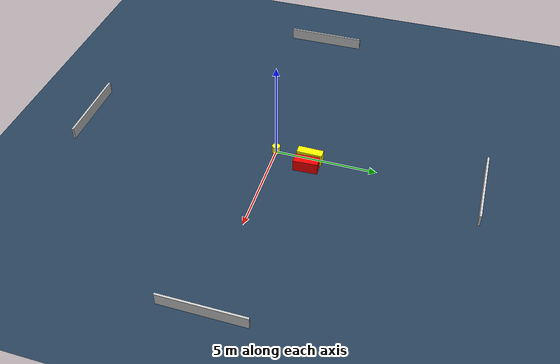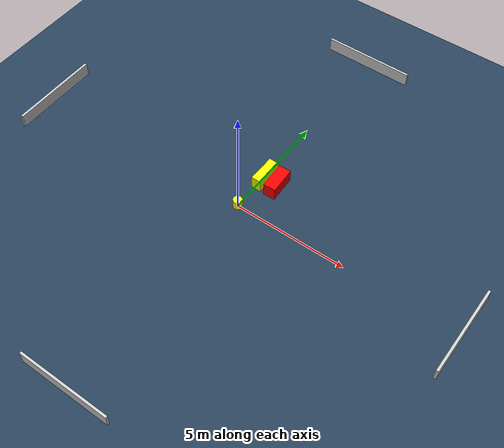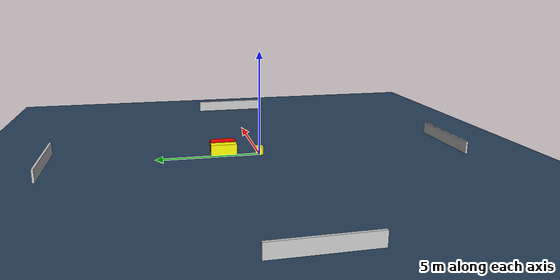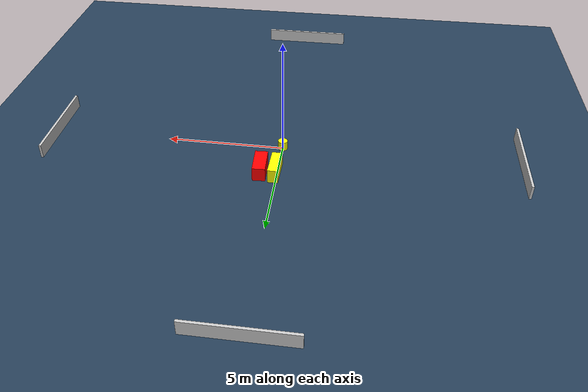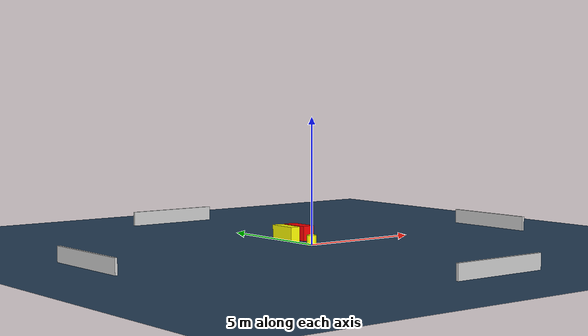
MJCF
<?xml version="1.0" ?>
<mujoco model="generated_environment">
  <option timestep="0.01" integrator="RK4" cone="elliptic"/>
  <default>
    <geom density="1"/>
  </default>
  <asset>
    <texture builtin="gradient" height="3072" name="skybox" rgb1="0.3 0.5 0.7" rgb2="0 0 0" type="skybox" width="512"/>
    <texture builtin="checker" height="300" name="groundplane" rgb1="0.2 0.3 0.4" rgb2="0.1 0.2 0.3" type="2d" width="300"/>
    <material name="groundplane" reflectance="0.2" texrepeat="5 5" texture="groundplane"/>
  </asset>
  <worldbody>
    <light dir="0 0 -1" directional="true" pos="0 0 1.5"/>
    <geom condim="3" friction="0.5 0.005 0.001" material="groundplane" name="floor" pos="0 0 0" size="0 0 0.05" type="plane"/>
    <body name="walls">
      <geom name="wall_1" condim="4" pos="-10.0 0.0 0.3" rgba="0.800000011920929 0.800000011920929 0.800000011920929 1.0" size="0.05 2.0 0.3" type="box"/>
      <geom name="wall_2" condim="4" pos="10.0 0.0 0.3" rgba="0.800000011920929 0.800000011920929 0.800000011920929 1.0" size="0.05 2.0 0.3" type="box"/>
      <geom name="wall_3" condim="4" pos="0.0 -10.0 0.3" rgba="0.800000011920929 0.800000011920929 0.800000011920929 1.0" size="2.0 0.05 0.3" type="box"/>
      <geom name="wall_4" condim="4" pos="0.0 10.0 0.3" rgba="0.800000011920929 0.800000011920929 0.800000011920929 1.0" size="2.0 0.05 0.3" type="box"/>
    </body>
    <body name="robot">
      <joint name="joint_x" type="slide" pos="0 0 0" axis="1 0 0"/>
      <joint name="joint_y" type="slide" pos="0 0 0" axis="0 1 0"/>
      <geom name="robot" type="cylinder" pos="0.0 0.0 0.2" size="0.2 0.2 0.0" mass="5.0" friction="1.0 0.005 0.0001" condim="4" rgba="1.0 1.0 0.0 1.0"/>
    </body>
    <body name="obstacle_1_movable">
      <geom name="obstacle_1_movable" condim="4" pos="0.09234529987073871 1.7457839073904289 0.3" euler="0 0 178.86478001412044" friction="0.0 0.005 0.001" rgba="1.0 1.0 0.0 1.0" size="0.2133442109533119 0.6234821213535477 0.3" type="box" mass="0.1"/>
      <joint type="free"/>
    </body>
    <body name="obstacle_2_static">
      <geom name="obstacle_2_static" condim="4" pos="0.7072458807194653 1.716726316607869 0.3" euler="0 0 2.5017701916329083" friction="0.0 0.005 0.001" rgba="1.0 0.0 0.0 1.0" size="0.26821008510350264 0.5987879909400194 0.3" type="box"/>
    </body>
  </worldbody>
  <actuator>
    <motor name="actuator_x" joint="joint_x" gear="1" ctrlrange="-1 1"/>
    <motor name="actuator_y" joint="joint_y" gear="1" ctrlrange="-1 1"/>
  </actuator>
</mujoco>
